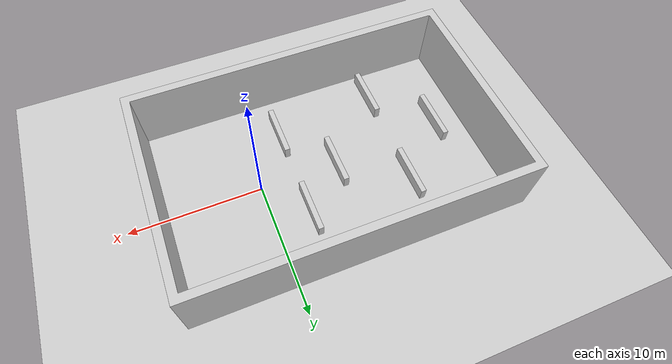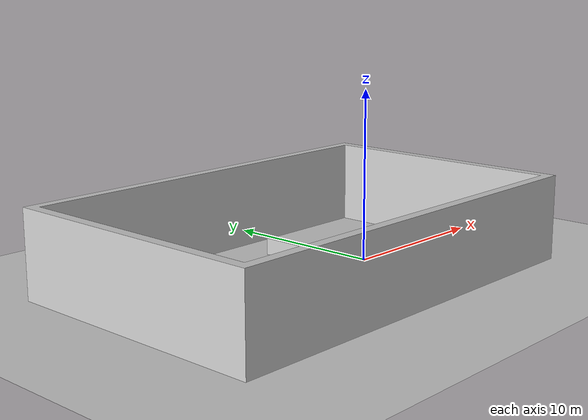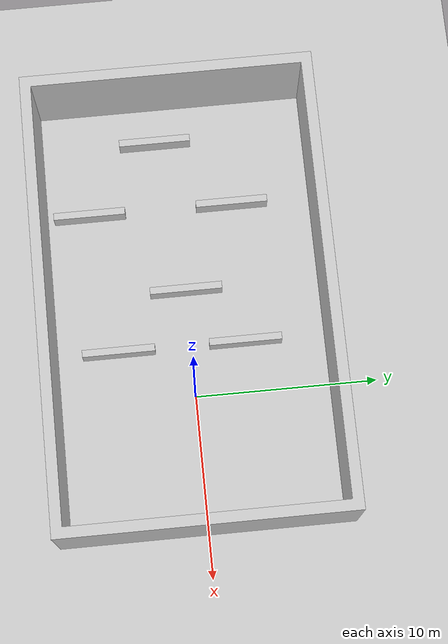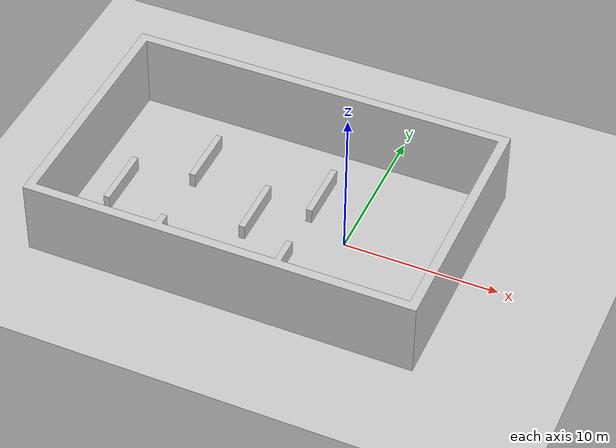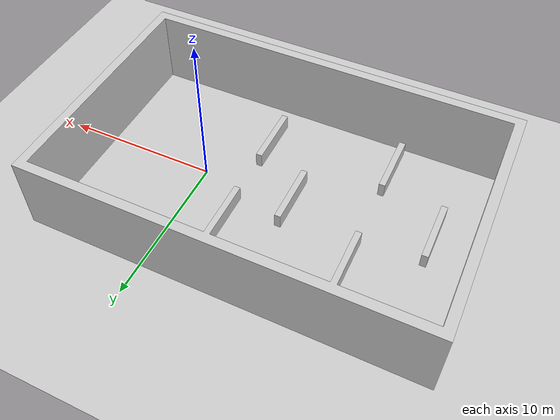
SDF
<?xml version="1.0"?>
<sdf version="1.6">
  <world name="default">

    <physics name="1ms" type="ignored">
      <max_step_size>0.001</max_step_size>
      <real_time_factor>1.0</real_time_factor>
    </physics>
    <plugin filename="gz-sim-physics-system" name="gz::sim::systems::Physics"></plugin>
    <plugin filename="gz-sim-user-commands-system" name="gz::sim::systems::UserCommands"></plugin>
    <plugin filename="gz-sim-scene-broadcaster-system" name="gz::sim::systems::SceneBroadcaster"></plugin>
    <plugin filename="gz-sim-imu-system" name="gz::sim::systems::Imu"></plugin>
    <plugin filename="gz-sim-sensors-system" name="gz::sim::systems::Sensors">
      <render_engine>ogre2</render_engine>
    </plugin>

    <scene>
      <shadows>false</shadows>
    </scene>

    <light type="directional" name="sun">
      <cast_shadows>true</cast_shadows>
      <pose>0 0 10 0 0 0</pose>
      <diffuse>0.8 0.8 0.8 1</diffuse>
      <specular>0.2 0.2 0.2 1</specular>
      <attenuation>
        <range>1000</range>
        <constant>0.9</constant>
        <linear>0.01</linear>
        <quadratic>0.001</quadratic>
      </attenuation>
      <direction>-0.5 0.1 -0.9</direction>
    </light>

    <model name="ground_plane">
      <static>true</static>
      <link name="link">
        <collision name="collision">
          <geometry>
            <plane>
              <normal>0 0 1</normal>
              <size>100 100</size>
            </plane>
          </geometry>
        </collision>
        <visual name="visual">
          <geometry>
            <plane>
              <normal>0 0 1</normal>
              <size>100 100</size>
            </plane>
          </geometry>
          <material>
            <ambient>0.8 0.8 0.8 1</ambient>
            <diffuse>0.8 0.8 0.8 1</diffuse>
            <specular>0.8 0.8 0.8 1</specular>
          </material>
        </visual>
      </link>
    </model>
  <model name="env">
  <pose>4 -5 0 0 0 0</pose>
    <static>true</static>
    <link name="link2">
      <collision name="collision2">
        <geometry>
          <mesh scale="1.0">
            <uri>map.stl</uri>
          </mesh>
        </geometry>
      </collision>
      <visual name="visual2">
        <geometry>
          <mesh scale="1.0">
            <uri>map.stl</uri>
          </mesh>
        </geometry>
        <material>
          <ambient>0.8 0.8 0.8 1</ambient>
          <diffuse>0.8 0.8 0.8 1</diffuse>
          <specular>0.8 0.8 0.8 1</specular>
        </material>
      </visual>
    </link>
  </model>

  <!-- Red Cube -->

  </world>
</sdf>
